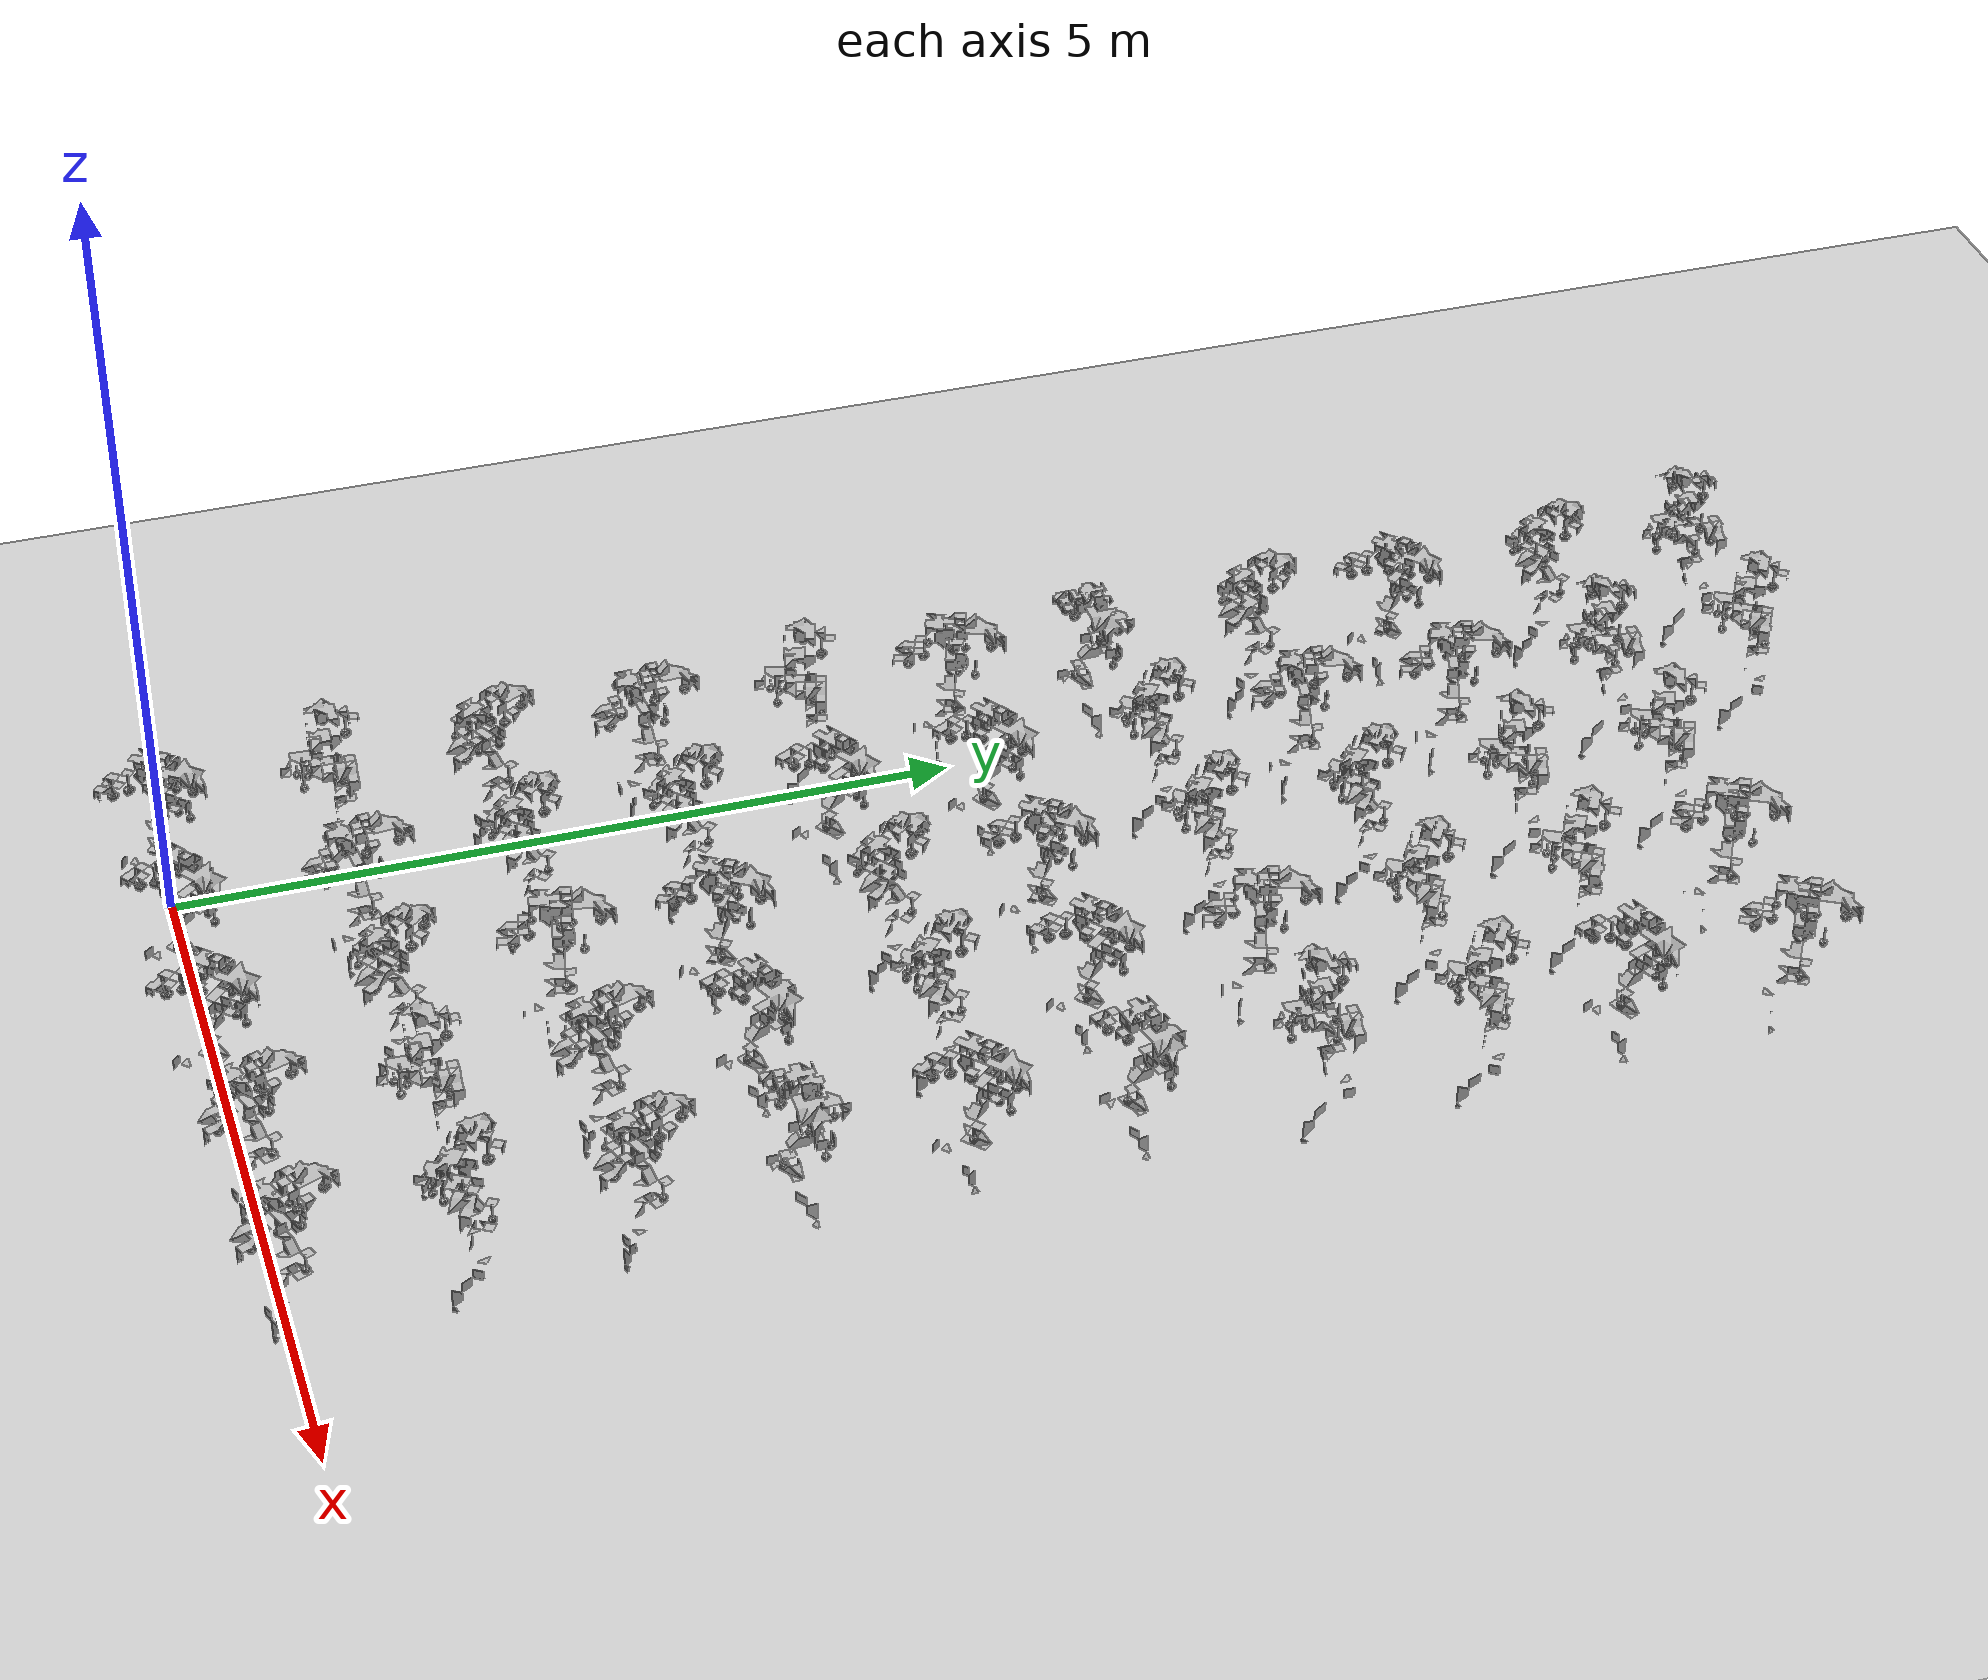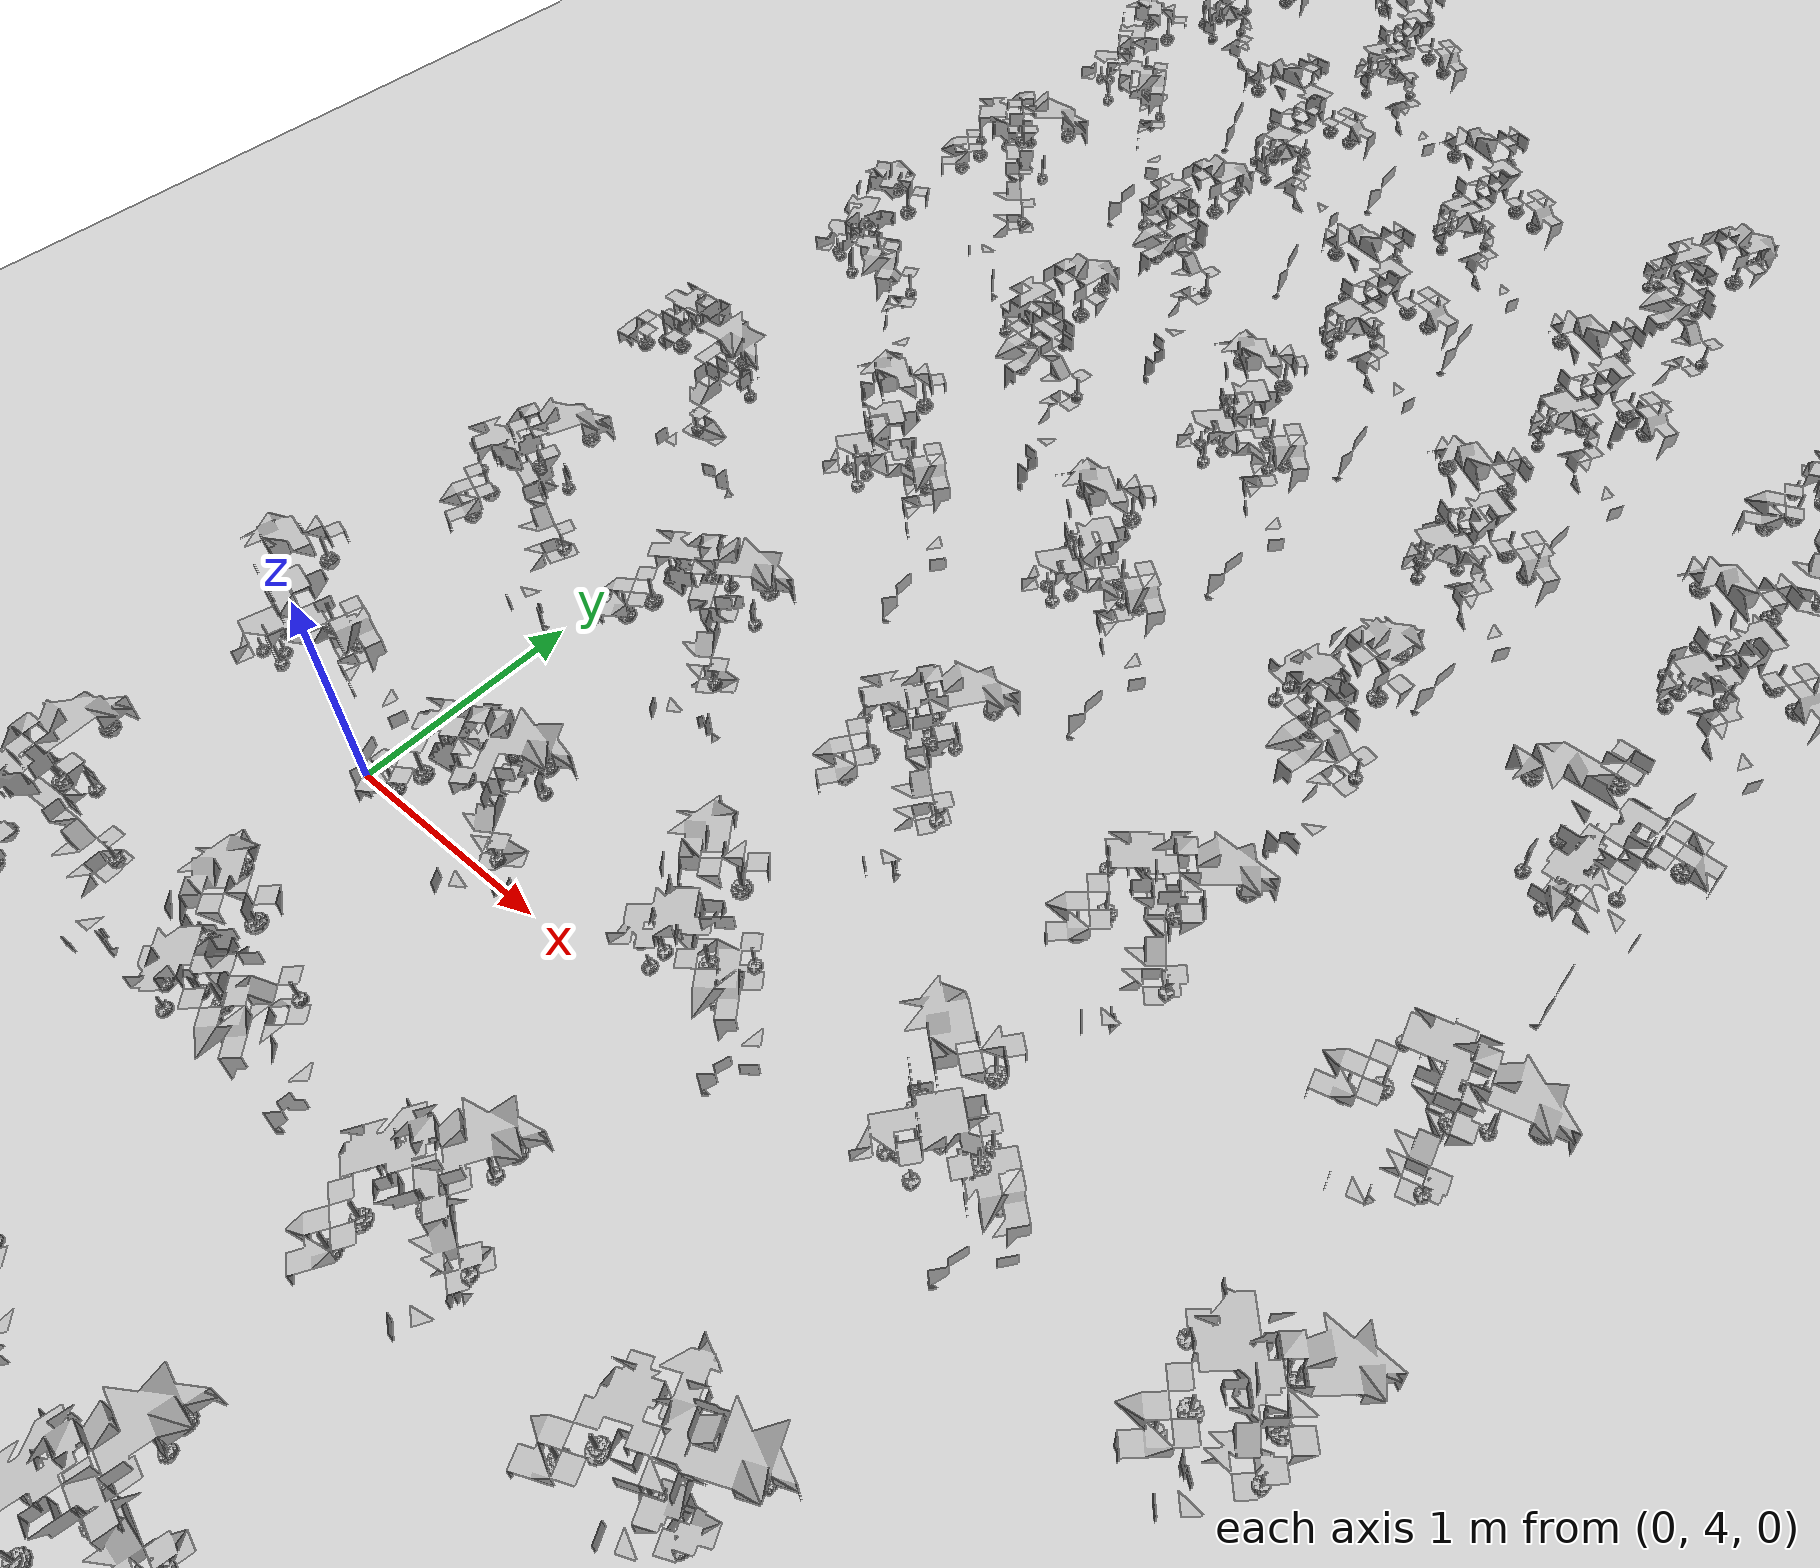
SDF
<?xml version="1.0"?>
<sdf version="1.6">
	<world name="default">
		<physics type="ode">
			<max_step_size>0.004</max_step_size>
			<real_time_factor>1</real_time_factor>
			<real_time_update_rate>250</real_time_update_rate>
			<ode>
				<solver>
					<iters>50</iters>
					<island_threads>4</island_threads>
				</solver>
			</ode>
		</physics>
		<scene>
			<shadows>false</shadows>
			<grid>false</grid>
			<sky>
				<clouds>
					<speed>4</speed>
				</clouds>
			</sky>
		</scene>
		<include>
			<uri>model://sun</uri>
		</include>
		<include>
			<uri>model://ground_plane</uri>
		</include>
		<include>
			<uri>model://tomato_plant</uri>
			<name>plant_0</name>
			<pose>0 0 0 0 0 0.9501907210390527</pose>
		</include>
		<include>
			<uri>model://tomato_plant</uri>
			<name>plant_1</name>
			<pose>1 0 0 0 0 0.6496009529112812</pose>
		</include>
		<include>
			<uri>model://tomato_plant</uri>
			<name>plant_2</name>
			<pose>2 0 0 0 0 0.8103134429105857</pose>
		</include>
		<include>
			<uri>model://tomato_plant</uri>
			<name>plant_3</name>
			<pose>3 0 0 0 0 1.9155484421523403</pose>
		</include>
		<include>
			<uri>model://tomato_plant</uri>
			<name>plant_4</name>
			<pose>4 0 0 0 0 1.946699252902061</pose>
		</include>
		<include>
			<uri>model://tomato_plant</uri>
			<name>plant_5</name>
			<pose>0 1 0 0 0 3.08895871190208</pose>
		</include>
		<include>
			<uri>model://tomato_plant</uri>
			<name>plant_6</name>
			<pose>1 1 0 0 0 1.6629178224788665</pose>
		</include>
		<include>
			<uri>model://tomato_plant</uri>
			<name>plant_7</name>
			<pose>2 1 0 0 0 2.2095710508754767</pose>
		</include>
		<include>
			<uri>model://tomato_plant</uri>
			<name>plant_8</name>
			<pose>3 1 0 0 0 3.1254881333579743</pose>
		</include>
		<include>
			<uri>model://tomato_plant</uri>
			<name>plant_9</name>
			<pose>4 1 0 0 0 2.5973043456111893</pose>
		</include>
		<include>
			<uri>model://tomato_plant</uri>
			<name>plant_10</name>
			<pose>0 2 0 0 0 2.0621819205604184</pose>
		</include>
		<include>
			<uri>model://tomato_plant</uri>
			<name>plant_11</name>
			<pose>1 2 0 0 0 2.3850574358816368</pose>
		</include>
		<include>
			<uri>model://tomato_plant</uri>
			<name>plant_12</name>
			<pose>2 2 0 0 0 1.3554191512845355</pose>
		</include>
		<include>
			<uri>model://tomato_plant</uri>
			<name>plant_13</name>
			<pose>3 2 0 0 0 1.9179283211432245</pose>
		</include>
		<include>
			<uri>model://tomato_plant</uri>
			<name>plant_14</name>
			<pose>4 2 0 0 0 1.9647015197997921</pose>
		</include>
		<include>
			<uri>model://tomato_plant</uri>
			<name>plant_15</name>
			<pose>0 3 0 0 0 1.6480386552952162</pose>
		</include>
		<include>
			<uri>model://tomato_plant</uri>
			<name>plant_16</name>
			<pose>1 3 0 0 0 2.3178949749082354</pose>
		</include>
		<include>
			<uri>model://tomato_plant</uri>
			<name>plant_17</name>
			<pose>2 3 0 0 0 0.9981659993758384</pose>
		</include>
		<include>
			<uri>model://tomato_plant</uri>
			<name>plant_18</name>
			<pose>3 3 0 0 0 0.4208985559377873</pose>
		</include>
		<include>
			<uri>model://tomato_plant</uri>
			<name>plant_19</name>
			<pose>4 3 0 0 0 0.017628788036459488</pose>
		</include>
		<include>
			<uri>model://tomato_plant</uri>
			<name>plant_20</name>
			<pose>0 4 0 0 0 2.8774781532100704</pose>
		</include>
		<include>
			<uri>model://tomato_plant</uri>
			<name>plant_21</name>
			<pose>1 4 0 0 0 0.5663701087339951</pose>
		</include>
		<include>
			<uri>model://tomato_plant</uri>
			<name>plant_22</name>
			<pose>2 4 0 0 0 2.235401395284901</pose>
		</include>
		<include>
			<uri>model://tomato_plant</uri>
			<name>plant_23</name>
			<pose>3 4 0 0 0 2.443893806512434</pose>
		</include>
		<include>
			<uri>model://tomato_plant</uri>
			<name>plant_24</name>
			<pose>4 4 0 0 0 0.7248988574037456</pose>
		</include>
		<include>
			<uri>model://tomato_plant</uri>
			<name>plant_25</name>
			<pose>0 5 0 0 0 1.2024330791503197</pose>
		</include>
		<include>
			<uri>model://tomato_plant</uri>
			<name>plant_26</name>
			<pose>1 5 0 0 0 0.5791526130920843</pose>
		</include>
		<include>
			<uri>model://tomato_plant</uri>
			<name>plant_27</name>
			<pose>2 5 0 0 0 0.9222339891229956</pose>
		</include>
		<include>
			<uri>model://tomato_plant</uri>
			<name>plant_28</name>
			<pose>3 5 0 0 0 0.7007186488526564</pose>
		</include>
		<include>
			<uri>model://tomato_plant</uri>
			<name>plant_29</name>
			<pose>4 5 0 0 0 0.229535390328961</pose>
		</include>
		<include>
			<uri>model://tomato_plant</uri>
			<name>plant_30</name>
			<pose>0 6 0 0 0 0.01877245335056894</pose>
		</include>
		<include>
			<uri>model://tomato_plant</uri>
			<name>plant_31</name>
			<pose>1 6 0 0 0 2.4733826226160054</pose>
		</include>
		<include>
			<uri>model://tomato_plant</uri>
			<name>plant_32</name>
			<pose>2 6 0 0 0 2.4737253940690955</pose>
		</include>
		<include>
			<uri>model://tomato_plant</uri>
			<name>plant_33</name>
			<pose>3 6 0 0 0 1.3037243171546091</pose>
		</include>
		<include>
			<uri>model://tomato_plant</uri>
			<name>plant_34</name>
			<pose>4 6 0 0 0 3.0945625048587013</pose>
		</include>
		<include>
			<uri>model://tomato_plant</uri>
			<name>plant_35</name>
			<pose>0 7 0 0 0 2.023215448416668</pose>
		</include>
		<include>
			<uri>model://tomato_plant</uri>
			<name>plant_36</name>
			<pose>1 7 0 0 0 1.3986517327927162</pose>
		</include>
		<include>
			<uri>model://tomato_plant</uri>
			<name>plant_37</name>
			<pose>2 7 0 0 0 2.37256386082513</pose>
		</include>
		<include>
			<uri>model://tomato_plant</uri>
			<name>plant_38</name>
			<pose>3 7 0 0 0 2.5642782293087727</pose>
		</include>
		<include>
			<uri>model://tomato_plant</uri>
			<name>plant_39</name>
			<pose>4 7 0 0 0 2.570870873106727</pose>
		</include>
		<include>
			<uri>model://tomato_plant</uri>
			<name>plant_40</name>
			<pose>0 8 0 0 0 0.7503034892150906</pose>
		</include>
		<include>
			<uri>model://tomato_plant</uri>
			<name>plant_41</name>
			<pose>1 8 0 0 0 1.3014653733691925</pose>
		</include>
		<include>
			<uri>model://tomato_plant</uri>
			<name>plant_42</name>
			<pose>2 8 0 0 0 2.8768819616959256</pose>
		</include>
		<include>
			<uri>model://tomato_plant</uri>
			<name>plant_43</name>
			<pose>3 8 0 0 0 2.63686429633587</pose>
		</include>
		<include>
			<uri>model://tomato_plant</uri>
			<name>plant_44</name>
			<pose>4 8 0 0 0 0.38418782683632763</pose>
		</include>
		<include>
			<uri>model://tomato_plant</uri>
			<name>plant_45</name>
			<pose>0 9 0 0 0 2.0923180963190076</pose>
		</include>
		<include>
			<uri>model://tomato_plant</uri>
			<name>plant_46</name>
			<pose>1 9 0 0 0 3.0773022270094477</pose>
		</include>
		<include>
			<uri>model://tomato_plant</uri>
			<name>plant_47</name>
			<pose>2 9 0 0 0 2.7508447633279376</pose>
		</include>
		<include>
			<uri>model://tomato_plant</uri>
			<name>plant_48</name>
			<pose>3 9 0 0 0 1.0909425893895366</pose>
		</include>
		<include>
			<uri>model://tomato_plant</uri>
			<name>plant_49</name>
			<pose>4 9 0 0 0 1.064887338198934</pose>
		</include>
		<include>
			<uri>model://tomato_plant</uri>
			<name>plant_50</name>
			<pose>0 10 0 0 0 3.103231781966376</pose>
		</include>
		<include>
			<uri>model://tomato_plant</uri>
			<name>plant_51</name>
			<pose>1 10 0 0 0 2.6191734367223356</pose>
		</include>
	</world>
</sdf>

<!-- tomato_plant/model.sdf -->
<sdf version="1.6">
    <model name="tomato_plant">
	<static>false</static>
      <link name="tomato_plant_link">

        <inertial>
          <pose>0 0 0 0 0 0</pose>
          <mass>20</mass>
          <inertia>
            <ixx>0.2006</ixx>
            <ixy>0</ixy>
            <ixz>0</ixz>
            <iyy>0.2006</iyy>
            <iyz>0</iyz>
            <izz>0.4</izz>
          </inertia>
        </inertial>

        <visual name="visual">
          <pose>0 0 0 0 0 0</pose>
          <geometry>
            <mesh><uri>model://tomato_plant/meshes/tomato_plant.obj</uri></mesh>
          </geometry>
        </visual>
        <collision name="collision">
          <pose>0 0 0.01 0 0 0</pose>
       <geometry>
          <cylinder>
            <radius>0.2</radius>
            <length>0.02</length>
          </cylinder>
        </geometry>
        </collision>
      </link>

<!-- tomato link -->
      <link name="t_link_0">
        <pose>0.176111 0.046061 0.713729 0 0 0</pose>
        <inertial>
          <mass>0.001</mass>
          <inertia>
            <ixx>3.6e-03</ixx>
            <ixy>0</ixy>
            <ixz>0</ixz>
            <iyy>3.6e-03</iyy>
            <iyz>0</iyz>
            <izz>3.6e-03</izz>
          </inertia>
        </inertial>

      <surface>
        <friction>
          <ode>
            <mu>100000</mu>
            <mu2>100000</mu2>
          </ode>
        </friction>
      </surface>
        <collision name="collision">
          <geometry>
            <sphere><radius>0.02</radius></sphere>
          </geometry>
        </collision>
        <visual name="visual">
          <geometry>
            <mesh><uri>model://green_tomato/meshes/green_tomato.obj</uri></mesh>
          </geometry>
        </visual>
      </link>
      <joint name="t_joint_0" type="fixed">
        <parent>tomato_plant_link</parent>
        <child>t_link_0</child>
        <axis>
          <xyz>0 0 1</xyz>
          <use_parent_model_frame>true</use_parent_model_frame>
        </axis>
        <sensor name="force_torque" type="force_torque">
          <always_on>true</always_on>
          <update_rate>100</update_rate>
          <plugin name="breakable_0" filename="libBreakableJointPlugin.so">
            <breaking_force_N>10</breaking_force_N>
          </plugin>
        </sensor>
      </joint>

      <link name="t_link_1">
        <pose>0.063172 0.108629 0.685474 0 0 0</pose>
        <inertial>
          <mass>0.001</mass>
          <inertia>
            <ixx>3.6e-03</ixx>
            <ixy>0</ixy>
            <ixz>0</ixz>
            <iyy>3.6e-03</iyy>
            <iyz>0</iyz>
            <izz>3.6e-03</izz>
          </inertia>
        </inertial>

      <surface>
        <friction>
          <ode>
            <mu>100000</mu>
            <mu2>100000</mu2>
          </ode>
        </friction>
      </surface>

        <collision name="collision">
          <geometry>
            <sphere><radius>0.02</radius></sphere>
          </geometry>
        </collision>
        <visual name="visual">
          <geometry>
            <mesh><uri>model://green_tomato/meshes/green_tomato.obj</uri></mesh>
          </geometry>
        </visual>
      </link>
      <joint name="t_joint_1" type="fixed">
        <parent>tomato_plant_link</parent>
        <child>t_link_1</child>
        <axis>
          <xyz>0 0 1</xyz>
          <use_parent_model_frame>true</use_parent_model_frame>
        </axis>
        <sensor name="force_torque" type="force_torque">
          <always_on>true</always_on>
          <update_rate>100</update_rate>
          <plugin name="breakable_1" filename="libBreakableJointPlugin.so">
            <breaking_force_N>10</breaking_force_N>
          </plugin>
        </sensor>
      </joint>

      <link name="t_link_2">
        <pose>0.062027 -0.170581 0.614534 0 0 0</pose>
        <inertial>
          <mass>0.001</mass>
          <inertia>
            <ixx>3.6e-03</ixx>
            <ixy>0</ixy>
            <ixz>0</ixz>
            <iyy>3.6e-03</iyy>
            <iyz>0</iyz>
            <izz>3.6e-03</izz>
          </inertia>
        </inertial>

      <surface>
        <friction>
          <ode>
            <mu>100000</mu>
            <mu2>100000</mu2>
          </ode>
        </friction>
      </surface>

        <collision name="collision">
          <geometry>
            <sphere><radius>0.02</radius></sphere>
          </geometry>
        </collision>
        <visual name="visual">
          <geometry>
            <mesh><uri>model://green_tomato/meshes/green_tomato.obj</uri></mesh>
          </geometry>
        </visual>
      </link>
      <joint name="t_joint_2" type="fixed">
        <parent>tomato_plant_link</parent>
        <child>t_link_2</child>
        <axis>
          <xyz>0 0 1</xyz>
          <use_parent_model_frame>true</use_parent_model_frame>
        </axis>
        <sensor name="force_torque" type="force_torque">
          <always_on>true</always_on>
          <update_rate>100</update_rate>
          <plugin name="breakable_2" filename="libBreakableJointPlugin.so">
            <breaking_force_N>10</breaking_force_N>
          </plugin>
        </sensor>
      </joint>

      <link name="t_link_3">
        <pose>0.114746 0.0304 0.926457 0 0 0</pose>
        <inertial>
          <mass>0.001</mass>
          <inertia>
            <ixx>3.6e-03</ixx>
            <ixy>0</ixy>
            <ixz>0</ixz>
            <iyy>3.6e-03</iyy>
            <iyz>0</iyz>
            <izz>3.6e-03</izz>
          </inertia>
        </inertial>

      <surface>
        <friction>
          <ode>
            <mu>100000</mu>
            <mu2>100000</mu2>
          </ode>
        </friction>
      </surface>

        <collision name="collision">
          <geometry>
            <sphere><radius>0.02</radius></sphere>
          </geometry>
        </collision>
        <visual name="visual">
          <geometry>
            <mesh><uri>model://yellow_tomato/meshes/yellow_tomato.obj</uri></mesh>
          </geometry>
        </visual>
      </link>
      <joint name="t_joint_3" type="fixed">
        <parent>tomato_plant_link</parent>
        <child>t_link_3</child>
        <axis>
          <xyz>0 0 1</xyz>
          <use_parent_model_frame>true</use_parent_model_frame>
        </axis>
        <sensor name="force_torque" type="force_torque">
          <always_on>true</always_on>
          <update_rate>100</update_rate>
          <plugin name="breakable_3" filename="libBreakableJointPlugin.so">
            <breaking_force_N>10</breaking_force_N>
          </plugin>
        </sensor>
      </joint>

      <link name="t_link_4">
        <pose>0.003426 0.147925 0.840454 0 0 0</pose>
        <inertial>
          <mass>0.001</mass>
          <inertia>
            <ixx>3.6e-03</ixx>
            <ixy>0</ixy>
            <ixz>0</ixz>
            <iyy>3.6e-03</iyy>
            <iyz>0</iyz>
            <izz>3.6e-03</izz>
          </inertia>
        </inertial>

      <surface>
        <friction>
          <ode>
            <mu>100000</mu>
            <mu2>100000</mu2>
          </ode>
        </friction>
      </surface>

        <collision name="collision">
          <geometry>
            <sphere><radius>0.02</radius></sphere>
          </geometry>
        </collision>
        <visual name="visual">
          <geometry>
            <mesh><uri>model://yellow_tomato/meshes/yellow_tomato.obj</uri></mesh>
          </geometry>
        </visual>
      </link>
      <joint name="t_joint_4" type="fixed">
        <parent>tomato_plant_link</parent>
        <child>t_link_4</child>
        <axis>
          <xyz>0 0 1</xyz>
          <use_parent_model_frame>true</use_parent_model_frame>
        </axis>
        <sensor name="force_torque" type="force_torque">
          <always_on>true</always_on>
          <update_rate>100</update_rate>
          <plugin name="breakable_4" filename="libBreakableJointPlugin.so">
            <breaking_force_N>10</breaking_force_N>
          </plugin>
        </sensor>
      </joint>

      <link name="t_link_5">
        <pose>-0.12391 0.091553 0.91111 0 0 0</pose>
        <inertial>
          <mass>0.001</mass>
          <inertia>
            <ixx>3.6e-03</ixx>
            <ixy>0</ixy>
            <ixz>0</ixz>
            <iyy>3.6e-03</iyy>
            <iyz>0</iyz>
            <izz>3.6e-03</izz>
          </inertia>
        </inertial>

      <surface>
        <friction>
          <ode>
            <mu>100000</mu>
            <mu2>100000</mu2>
          </ode>
        </friction>
      </surface>
        <collision name="collision">
          <geometry>
            <sphere><radius>0.02</radius></sphere>
          </geometry>
        </collision>
        <visual name="visual">
          <geometry>
            <mesh><uri>model://yellow_tomato/meshes/yellow_tomato.obj</uri></mesh>
          </geometry>
        </visual>
      </link>
      <joint name="t_joint_5" type="fixed">
        <parent>tomato_plant_link</parent>
        <child>t_link_5</child>
        <axis>
          <xyz>0 0 1</xyz>
          <use_parent_model_frame>true</use_parent_model_frame>
        </axis>
        <sensor name="force_torque" type="force_torque">
          <always_on>true</always_on>
          <update_rate>100</update_rate>
          <plugin name="breakable_5" filename="libBreakableJointPlugin.so">
            <breaking_force_N>10</breaking_force_N>
          </plugin>
        </sensor>
      </joint>

      <link name="t_link_6">
        <pose>-0.23014 -0.132697 0.911579 0 0 0</pose>
        <inertial>
          <mass>0.001</mass>
          <inertia>
            <ixx>3.6e-03</ixx>
            <ixy>0</ixy>
            <ixz>0</ixz>
            <iyy>3.6e-03</iyy>
            <iyz>0</iyz>
            <izz>3.6e-03</izz>
          </inertia>
        </inertial>

      <surface>
        <friction>
          <ode>
            <mu>100000</mu>
            <mu2>100000</mu2>
          </ode>
        </friction>
      </surface>
        <collision name="collision">
          <geometry>
            <sphere><radius>0.024</radius></sphere>
          </geometry>
        </collision>
        <visual name="visual">
          <geometry>
            <mesh><uri>model://red_tomato/meshes/red_tomato.obj</uri></mesh>
          </geometry>
        </visual>
      </link>
      <joint name="t_joint_6" type="fixed">
        <parent>tomato_plant_link</parent>
        <child>t_link_6</child>
        <axis>
          <xyz>0 0 1</xyz>
          <use_parent_model_frame>true</use_parent_model_frame>
        </axis>
        <sensor name="force_torque" type="force_torque">
          <always_on>true</always_on>
          <update_rate>100</update_rate>
          <plugin name="breakable_6" filename="libBreakableJointPlugin.so">
            <breaking_force_N>10</breaking_force_N>
          </plugin>
        </sensor>
      </joint>

      <link name="t_link_7">
        <pose>-0.139776 -0.09326 0.950185 0 0 0</pose>
        <inertial>
          <mass>0.001</mass>
          <inertia>
            <ixx>3.6e-03</ixx>
            <ixy>0</ixy>
            <ixz>0</ixz>
            <iyy>3.6e-03</iyy>
            <iyz>0</iyz>
            <izz>3.6e-03</izz>
          </inertia>
        </inertial>

      <surface>
        <friction>
          <ode>
            <mu>100000</mu>
            <mu2>100000</mu2>
          </ode>
        </friction>
      </surface>
        <collision name="collision">
          <geometry>
            <sphere><radius>0.02</radius></sphere>
          </geometry>
        </collision>
        <visual name="visual">
          <geometry>
            <mesh><uri>model://red_tomato/meshes/red_tomato.obj</uri></mesh>
          </geometry>
        </visual>
      </link>
      <joint name="t_joint_7" type="fixed">
        <parent>tomato_plant_link</parent>
        <child>t_link_7</child>
        <axis>
          <xyz>0 0 1</xyz>
          <use_parent_model_frame>true</use_parent_model_frame>
        </axis>
        <sensor name="force_torque" type="force_torque">
          <always_on>true</always_on>
          <update_rate>100</update_rate>
          <plugin name="breakable_7" filename="libBreakableJointPlugin.so">
            <breaking_force_N>10</breaking_force_N>
          </plugin>
        </sensor>
      </joint>

      <link name="t_link_8">
        <pose>0.284181 -0.063758 1.01928 0 0 0</pose>
        <inertial>
          <mass>0.001</mass>
          <inertia>
            <ixx>3.6e-03</ixx>
            <ixy>0</ixy>
            <ixz>0</ixz>
            <iyy>3.6e-03</iyy>
            <iyz>0</iyz>
            <izz>3.6e-03</izz>
          </inertia>
        </inertial>

      <surface>
        <friction>
          <ode>
            <mu>100000</mu>
            <mu2>100000</mu2>
          </ode>
        </friction>
      </surface>

        <collision name="collision">
          <geometry>
            <sphere><radius>0.02</radius></sphere>
          </geometry>
        </collision>
        <visual name="visual">
          <geometry>
            <mesh><uri>model://red_tomato/meshes/red_tomato.obj</uri></mesh>
          </geometry>
        </visual>
      </link>
      <joint name="t_joint_8" type="fixed">
        <parent>tomato_plant_link</parent>
        <child>t_link_8</child>
        <axis>
          <xyz>0 0 1</xyz>
          <use_parent_model_frame>true</use_parent_model_frame>
        </axis>
        <sensor name="force_torque" type="force_torque">
          <always_on>true</always_on>
          <update_rate>100</update_rate>
          <plugin name="breakable_8" filename="libBreakableJointPlugin.so">
            <breaking_force_N>10</breaking_force_N>
          </plugin>
        </sensor>
      </joint>

      <link name="t_link_9">
        <pose>0.055319 -0.176349 1.06525 0 0 0</pose>
        <inertial>
          <mass>0.001</mass>
          <inertia>
            <ixx>3.6e-03</ixx>
            <ixy>0</ixy>
            <ixz>0</ixz>
            <iyy>3.6e-03</iyy>
            <iyz>0</iyz>
            <izz>3.6e-03</izz>
          </inertia>
        </inertial>

      <surface>
        <friction>
          <ode>
            <mu>100000</mu>
            <mu2>100000</mu2>
          </ode>
        </friction>
      </surface>
        <collision name="collision">
          <geometry>
            <sphere><radius>0.02</radius></sphere>
          </geometry>
        </collision>
        <visual name="visual">
          <geometry>
            <mesh><uri>model://red_tomato/meshes/red_tomato.obj</uri></mesh>
          </geometry>
        </visual>
      </link>
      <joint name="t_joint_9" type="fixed">
        <parent>tomato_plant_link</parent>
        <child>t_link_9</child>
        <axis>
          <xyz>0 0 1</xyz>
          <use_parent_model_frame>true</use_parent_model_frame>
        </axis>
        <sensor name="force_torque" type="force_torque">
          <always_on>true</always_on>
          <update_rate>100</update_rate>
          <plugin name="breakable_9" filename="libBreakableJointPlugin.so">
            <breaking_force_N>10</breaking_force_N>
          </plugin>
        </sensor>
      </joint>
    </model>
</sdf>
